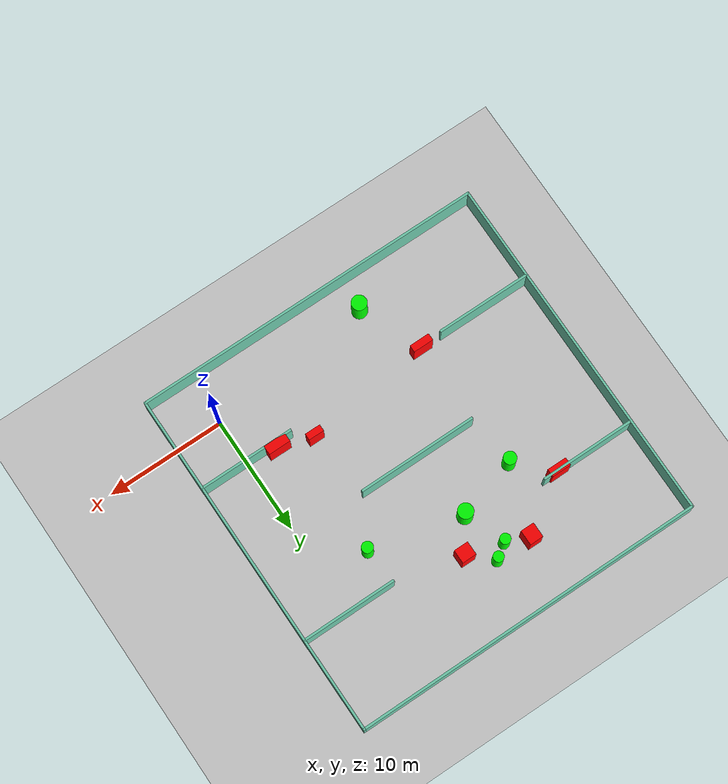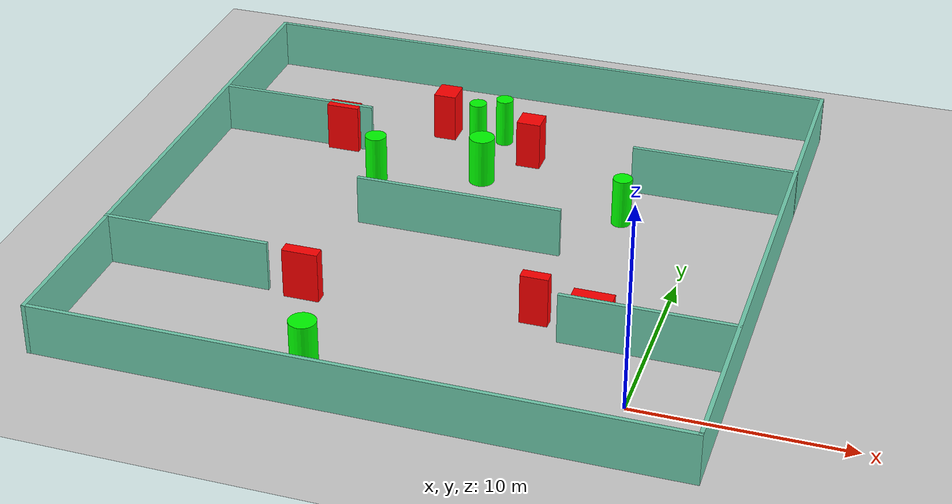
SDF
<sdf version="1.7">
 <world name="default">
  <light name="sun" type="directional">
   <pose>0 0 10 0 -0 0</pose>
   <diffuse>0.8 0.8 0.8 1</diffuse>
   <specular>0.2 0.2 0.2 1</specular>
   <attenuation>
    <range>1000</range>
    <constant>0.9</constant>
    <linear>0.01</linear>
    <quadratic>0.001</quadratic>
   </attenuation>
   <direction>-0.5 0.1 -0.9</direction>
   <spot><inner_angle>0</inner_angle><outer_angle>0</outer_angle><falloff>0</falloff></spot>
  </light>
  <model name="ground_plane">
   <static>1</static>
   <link name="link">
    <collision name="collision">
     <geometry><plane><normal>0 0 1</normal><size>100 100</size></plane></geometry>
     <surface>
      <contact><collide_bitmask>65535</collide_bitmask></contact>
      <friction><ode><mu>100</mu><mu2>50</mu2></ode></friction>
     </surface>
    </collision>
    <visual name="visual">
     <cast_shadows>0</cast_shadows>
     <geometry><plane><normal>0 0 1</normal><size>100 100</size></plane></geometry>
     <material>
      <script><uri>file://media/materials/scripts/gazebo.material</uri><name>Gazebo/Grey</name></script>
     </material>
    </visual>
   </link>
  </model>
  <gravity>0 0 -9.8</gravity>
  <magnetic_field>6e-06 2.3e-05 -4.2e-05</magnetic_field>
  <atmosphere type="adiabatic"/>
  <physics type="ode">
   <max_step_size>0.001</max_step_size>
   <real_time_factor>1</real_time_factor>
   <real_time_update_rate>1000</real_time_update_rate>
  </physics>
  <scene><ambient>0.4 0.4 0.4 1</ambient><background>0.7 0.7 0.7 1</background><shadows>1</shadows></scene>
  <spherical_coordinates>
   <surface_model>EARTH_WGS84</surface_model>
   <latitude_deg>0</latitude_deg>
   <longitude_deg>0</longitude_deg>
   <elevation>0</elevation>
   <heading_deg>0</heading_deg>
  </spherical_coordinates>
  <model name="my_base_walls">
   <link name="Wall_10">
    <collision name="Wall_10_Collision">
     <geometry><box><size>8.2 0.2 2.5</size></box></geometry>
     <pose>0 0 1.25 0 -0 0</pose>
    </collision>
    <visual name="Wall_10_Visual">
     <pose>0 0 1.25 0 -0 0</pose>
     <geometry><box><size>8.2 0.2 2.5</size></box></geometry>
     <material>
      <script><uri>file://media/materials/scripts/gazebo.material</uri><name>Gazebo/Grey</name></script>
      <ambient>0.435294 0.796078 0.67451 1</ambient>
     </material>
     <meta><layer>0</layer></meta>
    </visual>
    <pose>-11 -7 0 0 -0 0</pose>
   </link>
   <link name="Wall_12">
    <collision name="Wall_12_Collision">
     <geometry><box><size>8.2 0.2 2.5</size></box></geometry>
     <pose>0 0 1.25 0 -0 0</pose>
    </collision>
    <visual name="Wall_12_Visual">
     <pose>0 0 1.25 0 -0 0</pose>
     <geometry><box><size>8.2 0.2 2.5</size></box></geometry>
     <material>
      <script><uri>file://media/materials/scripts/gazebo.material</uri><name>Gazebo/Grey</name></script>
      <ambient>0.435294 0.796078 0.67451 1</ambient>
     </material>
     <meta><layer>0</layer></meta>
    </visual>
    <pose>-11 7 0 0 -0 0</pose>
   </link>
   <link name="Wall_14">
    <collision name="Wall_14_Collision">
     <geometry><box><size>8.2 0.2 2.5</size></box></geometry>
     <pose>0 0 1.25 0 -0 0</pose>
    </collision>
    <visual name="Wall_14_Visual">
     <pose>0 0 1.25 0 -0 0</pose>
     <geometry><box><size>8.2 0.2 2.5</size></box></geometry>
     <material>
      <script><uri>file://media/materials/scripts/gazebo.material</uri><name>Gazebo/Grey</name></script>
      <ambient>0.435294 0.796078 0.67451 1</ambient>
     </material>
     <meta><layer>0</layer></meta>
    </visual>
    <pose>11 7 0 0 -0 3.14159</pose>
   </link>
   <link name="Wall_16">
    <collision name="Wall_16_Collision">
     <geometry><box><size>10.2 0.2 2.5</size></box></geometry>
     <pose>0 0 1.25 0 -0 0</pose>
    </collision>
    <visual name="Wall_16_Visual">
     <pose>0 0 1.25 0 -0 0</pose>
     <geometry><box><size>10.2 0.2 2.5</size></box></geometry>
     <material>
      <script><uri>file://media/materials/scripts/gazebo.material</uri><name>Gazebo/Grey</name></script>
      <ambient>0.435294 0.796078 0.67451 1</ambient>
     </material>
     <meta><layer>0</layer></meta>
    </visual>
    <pose>0 0 0 0 -0 3.14159</pose>
   </link>
   <link name="Wall_2">
    <collision name="Wall_2_Collision">
     <geometry><box><size>30.2 0.2 2.5</size></box></geometry>
     <pose>0 0 1.25 0 -0 0</pose>
    </collision>
    <visual name="Wall_2_Visual">
     <pose>0 0 1.25 0 -0 0</pose>
     <geometry><box><size>30.2 0.2 2.5</size></box></geometry>
     <material>
      <script><uri>file://media/materials/scripts/gazebo.material</uri><name>Gazebo/Grey</name></script>
      <ambient>0.435294 0.796078 0.67451 1</ambient>
     </material>
     <meta><layer>0</layer></meta>
    </visual>
    <pose>0 -15 0 0 -0 3.14159</pose>
   </link>
   <link name="Wall_3">
    <collision name="Wall_3_Collision">
     <geometry><box><size>30.2 0.2 2.5</size></box></geometry>
     <pose>0 0 1.25 0 -0 0</pose>
    </collision>
    <visual name="Wall_3_Visual">
     <pose>0 0 1.25 0 -0 0</pose>
     <geometry><box><size>30.2 0.2 2.5</size></box></geometry>
     <material>
      <script><uri>file://media/materials/scripts/gazebo.material</uri><name>Gazebo/Grey</name></script>
      <ambient>0.435294 0.796078 0.67451 1</ambient>
     </material>
     <meta><layer>0</layer></meta>
    </visual>
    <pose>-15 0 0 0 -0 1.5708</pose>
   </link>
   <link name="Wall_4">
    <collision name="Wall_4_Collision">
     <geometry><box><size>30.2 0.2 2.5</size></box></geometry>
     <pose>0 0 1.25 0 -0 0</pose>
    </collision>
    <visual name="Wall_4_Visual">
     <pose>0 0 1.25 0 -0 0</pose>
     <geometry><box><size>30.2 0.2 2.5</size></box></geometry>
     <material>
      <script><uri>file://media/materials/scripts/gazebo.material</uri><name>Gazebo/Grey</name></script>
      <ambient>0.435294 0.796078 0.67451 1</ambient>
     </material>
     <meta><layer>0</layer></meta>
    </visual>
    <pose>0 15 0 0 -0 0</pose>
   </link>
   <link name="Wall_6">
    <collision name="Wall_6_Collision">
     <geometry><box><size>30.2 0.2 2.5</size></box></geometry>
     <pose>0 0 1.25 0 -0 0</pose>
    </collision>
    <visual name="Wall_6_Visual">
     <pose>0 0 1.25 0 -0 0</pose>
     <geometry><box><size>30.2 0.2 2.5</size></box></geometry>
     <material>
      <script><uri>file://media/materials/scripts/gazebo.material</uri><name>Gazebo/Grey</name></script>
      <ambient>0.435294 0.796078 0.67451 1</ambient>
     </material>
     <meta><layer>0</layer></meta>
    </visual>
    <pose>15 0 0 0 -0 1.5708</pose>
   </link>
   <link name="Wall_8">
    <collision name="Wall_8_Collision">
     <geometry><box><size>8.2 0.2 2.5</size></box></geometry>
     <pose>0 0 1.25 0 -0 0</pose>
    </collision>
    <visual name="Wall_8_Visual">
     <pose>0 0 1.25 0 -0 0</pose>
     <geometry><box><size>8.2 0.2 2.5</size></box></geometry>
     <material>
      <script><uri>file://media/materials/scripts/gazebo.material</uri><name>Gazebo/Grey</name></script>
      <ambient>0.435294 0.796078 0.67451 1</ambient>
     </material>
     <meta><layer>0</layer></meta>
    </visual>
    <pose>11 -7 0 0 -0 3.14159</pose>
   </link>
   <static>1</static>
   <pose>-11 11 0 0 -0 0</pose>
  </model>
  <model name="cylinder1">
   <static>1</static>
   <link name="link">
    <inertial>
     <mass>1</mass>
     <inertia><ixx>0.5</ixx><ixy>0</ixy><ixz>0</ixz><iyy>0.5</iyy><iyz>0</iyz><izz>1</izz></inertia>
    </inertial>
    <collision name="collision">
     <geometry><cylinder><radius>0.6447902791058187</radius><length>2.5</length></cylinder></geometry>
    </collision>
    <visual name="visual">
     <geometry><cylinder><radius>0.6447902791058187</radius><length>2.5</length></cylinder></geometry>
     <material>
      <ambient>0 1 0 1</ambient>
      <diffuse>0 1 0 1</diffuse>
      <specular>0.1 0.1 0.1 1</specular>
      <emissive>0 0 0 0</emissive>
     </material>
    </visual>
   </link>
   <pose>-11.564036265610556 16.683112732045867 1.25 0 0 0</pose>
  </model>
  <model name="cylinder2">
   <static>1</static>
   <link name="link">
    <inertial>
     <mass>1</mass>
     <inertia><ixx>0.5</ixx><ixy>0</ixy><ixz>0</ixz><iyy>0.5</iyy><iyz>0</iyz><izz>1</izz></inertia>
    </inertial>
    <collision name="collision">
     <geometry><cylinder><radius>0.4777724720583263</radius><length>2.5</length></cylinder></geometry>
    </collision>
    <visual name="visual">
     <geometry><cylinder><radius>0.4777724720583263</radius><length>2.5</length></cylinder></geometry>
     <material>
      <ambient>0 1 0 1</ambient>
      <diffuse>0 1 0 1</diffuse>
      <specular>0.1 0.1 0.1 1</specular>
      <emissive>0 0 0 0</emissive>
     </material>
    </visual>
   </link>
   <pose>-3.8407499618183465 14.807957068993876 1.25 0 0 0</pose>
  </model>
  <model name="cylinder3">
   <static>1</static>
   <link name="link">
    <inertial>
     <mass>1</mass>
     <inertia><ixx>0.5</ixx><ixy>0</ixy><ixz>0</ixz><iyy>0.5</iyy><iyz>0</iyz><izz>1</izz></inertia>
    </inertial>
    <collision name="collision">
     <geometry><cylinder><radius>0.53998703326156</radius><length>2.5</length></cylinder></geometry>
    </collision>
    <visual name="visual">
     <geometry><cylinder><radius>0.53998703326156</radius><length>2.5</length></cylinder></geometry>
     <material>
      <ambient>0 1 0 1</ambient>
      <diffuse>0 1 0 1</diffuse>
      <specular>0.1 0.1 0.1 1</specular>
      <emissive>0 0 0 0</emissive>
     </material>
    </visual>
   </link>
   <pose>-16.687035335358313 15.189529056364933 1.25 0 0 0</pose>
  </model>
  <model name="cylinder4">
   <static>1</static>
   <link name="link">
    <inertial>
     <mass>1</mass>
     <inertia><ixx>0.5</ixx><ixy>0</ixy><ixz>0</ixz><iyy>0.5</iyy><iyz>0</iyz><izz>1</izz></inertia>
    </inertial>
    <collision name="collision">
     <geometry><cylinder><radius>0.44562268689097345</radius><length>2.5</length></cylinder></geometry>
    </collision>
    <visual name="visual">
     <geometry><cylinder><radius>0.44562268689097345</radius><length>2.5</length></cylinder></geometry>
     <material>
      <ambient>0 1 0 1</ambient>
      <diffuse>0 1 0 1</diffuse>
      <specular>0.1 0.1 0.1 1</specular>
      <emissive>0 0 0 0</emissive>
     </material>
    </visual>
   </link>
   <pose>-12.840095237244663 20.11344051284389 1.25 0 0 0</pose>
  </model>
  <model name="cylinder5">
   <static>1</static>
   <link name="link">
    <inertial>
     <mass>1</mass>
     <inertia><ixx>0.5</ixx><ixy>0</ixy><ixz>0</ixz><iyy>0.5</iyy><iyz>0</iyz><izz>1</izz></inertia>
    </inertial>
    <collision name="collision">
     <geometry><cylinder><radius>0.44742096008291393</radius><length>2.5</length></cylinder></geometry>
    </collision>
    <visual name="visual">
     <geometry><cylinder><radius>0.44742096008291393</radius><length>2.5</length></cylinder></geometry>
     <material>
      <ambient>0 1 0 1</ambient>
      <diffuse>0 1 0 1</diffuse>
      <specular>0.1 0.1 0.1 1</specular>
      <emissive>0 0 0 0</emissive>
     </material>
    </visual>
   </link>
   <pose>-11.644025963202816 20.94690907163536 1.25 0 0 0</pose>
  </model>
  <model name="cylinder6">
   <static>1</static>
   <link name="link">
    <inertial>
     <mass>1</mass>
     <inertia><ixx>0.5</ixx><ixy>0</ixy><ixz>0</ixz><iyy>0.5</iyy><iyz>0</iyz><izz>1</izz></inertia>
    </inertial>
    <collision name="collision">
     <geometry><cylinder><radius>0.6437420555919428</radius><length>2.5</length></cylinder></geometry>
    </collision>
    <visual name="visual">
     <geometry><cylinder><radius>0.6437420555919428</radius><length>2.5</length></cylinder></geometry>
     <material>
      <ambient>0 1 0 1</ambient>
      <diffuse>0 1 0 1</diffuse>
      <specular>0.1 0.1 0.1 1</specular>
      <emissive>0 0 0 0</emissive>
     </material>
    </visual>
   </link>
   <pose>-14.00285327896606 -1.4074942018436767 1.25 0 0 0</pose>
  </model>
  <model name="box1">
   <static>1</static>
   <link name="link">
    <inertial>
     <mass>1</mass>
     <inertia><ixx>0.083</ixx><ixy>0</ixy><ixz>0</ixz><iyy>0.083</iyy><iyz>0</iyz><izz>0.083</izz></inertia>
    </inertial>
    <collision name="collision">
     <geometry><box><size>1.6599491947394347 0.6842997976731879 2.5</size></box></geometry>
    </collision>
    <visual name="visual">
     <geometry><box><size>1.6599491947394347 0.6842997976731879 2.5</size></box></geometry>
     <material>
      <ambient>1 0 0 1</ambient>
      <diffuse>1 0 0 1</diffuse>
      <specular>0.1 0.1 0.1 1</specular>
      <emissive>0 0 0 0</emissive>
     </material>
    </visual>
    <sensor name="my_contact" type="contact">
     <contact><collision>box_collision</collision><topic>__default_topic__</topic></contact>
    </sensor>
   </link>
   <pose>-19.368945946564427 17.887566034626353 1.25 0 0 0</pose>
  </model>
  <model name="box2">
   <static>1</static>
   <link name="link">
    <inertial>
     <mass>1</mass>
     <inertia><ixx>0.083</ixx><ixy>0</ixy><ixz>0</ixz><iyy>0.083</iyy><iyz>0</iyz><izz>0.083</izz></inertia>
    </inertial>
    <collision name="collision">
     <geometry><box><size>1.8940534291015707 0.757374940634066 2.5</size></box></geometry>
    </collision>
    <visual name="visual">
     <geometry><box><size>1.8940534291015707 0.757374940634066 2.5</size></box></geometry>
     <material>
      <ambient>1 0 0 1</ambient>
      <diffuse>1 0 0 1</diffuse>
      <specular>0.1 0.1 0.1 1</specular>
      <emissive>0 0 0 0</emissive>
     </material>
    </visual>
    <sensor name="my_contact" type="contact">
     <contact><collision>box_collision</collision><topic>__default_topic__</topic></contact>
    </sensor>
   </link>
   <pose>-2.601069223563261 4.317809722207032 1.25 0 0 0</pose>
  </model>
  <model name="box3">
   <static>1</static>
   <link name="link">
    <inertial>
     <mass>1</mass>
     <inertia><ixx>0.083</ixx><ixy>0</ixy><ixz>0</ixz><iyy>0.083</iyy><iyz>0</iyz><izz>0.083</izz></inertia>
    </inertial>
    <collision name="collision">
     <geometry><box><size>1.329811722160248 0.558893130019299 2.5</size></box></geometry>
    </collision>
    <visual name="visual">
     <geometry><box><size>1.329811722160248 0.558893130019299 2.5</size></box></geometry>
     <material>
      <ambient>1 0 0 1</ambient>
      <diffuse>1 0 0 1</diffuse>
      <specular>0.1 0.1 0.1 1</specular>
      <emissive>0 0 0 0</emissive>
     </material>
    </visual>
    <sensor name="my_contact" type="contact">
     <contact><collision>box_collision</collision><topic>__default_topic__</topic></contact>
    </sensor>
   </link>
   <pose>-5.455026406873195 5.182491416823304 1.25 0 0 0</pose>
  </model>
  <model name="box4">
   <static>1</static>
   <link name="link">
    <inertial>
     <mass>1</mass>
     <inertia><ixx>0.083</ixx><ixy>0</ixy><ixz>0</ixz><iyy>0.083</iyy><iyz>0</iyz><izz>0.083</izz></inertia>
    </inertial>
    <collision name="collision">
     <geometry><box><size>1.734437649253632 0.5984523673970185 2.5</size></box></geometry>
    </collision>
    <visual name="visual">
     <geometry><box><size>1.734437649253632 0.5984523673970185 2.5</size></box></geometry>
     <material>
      <ambient>1 0 0 1</ambient>
      <diffuse>1 0 0 1</diffuse>
      <specular>0.1 0.1 0.1 1</specular>
      <emissive>0 0 0 0</emissive>
     </material>
    </visual>
    <sensor name="my_contact" type="contact">
     <contact><collision>box_collision</collision><topic>__default_topic__</topic></contact>
    </sensor>
   </link>
   <pose>-16.190213133296787 3.9324198616566015 1.25 0 0 0</pose>
  </model>
  <model name="box5">
   <static>1</static>
   <link name="link">
    <inertial>
     <mass>1</mass>
     <inertia><ixx>0.083</ixx><ixy>0</ixy><ixz>0</ixz><iyy>0.083</iyy><iyz>0</iyz><izz>0.083</izz></inertia>
    </inertial>
    <collision name="collision">
     <geometry><box><size>1.2295981406258065 1.1561269251101933 2.5</size></box></geometry>
    </collision>
    <visual name="visual">
     <geometry><box><size>1.2295981406258065 1.1561269251101933 2.5</size></box></geometry>
     <material>
      <ambient>1 0 0 1</ambient>
      <diffuse>1 0 0 1</diffuse>
      <specular>0.1 0.1 0.1 1</specular>
      <emissive>0 0 0 0</emissive>
     </material>
    </visual>
    <sensor name="my_contact" type="contact">
     <contact><collision>box_collision</collision><topic>__default_topic__</topic></contact>
    </sensor>
   </link>
   <pose>-9.732026990656504 19.272811370756372 1.25 0 0 0</pose>
  </model>
  <model name="box6">
   <static>1</static>
   <link name="link">
    <inertial>
     <mass>1</mass>
     <inertia><ixx>0.083</ixx><ixy>0</ixy><ixz>0</ixz><iyy>0.083</iyy><iyz>0</iyz><izz>0.083</izz></inertia>
    </inertial>
    <collision name="collision">
     <geometry><box><size>1.1525751462952472 1.2777045630604955 2.5</size></box></geometry>
    </collision>
    <visual name="visual">
     <geometry><box><size>1.1525751462952472 1.2777045630604955 2.5</size></box></geometry>
     <material>
      <ambient>1 0 0 1</ambient>
      <diffuse>1 0 0 1</diffuse>
      <specular>0.1 0.1 0.1 1</specular>
      <emissive>0 0 0 0</emissive>
     </material>
    </visual>
    <sensor name="my_contact" type="contact">
     <contact><collision>box_collision</collision><topic>__default_topic__</topic></contact>
    </sensor>
   </link>
   <pose>-14.722235539521424 20.93199293180399 1.25 0 0 0</pose>
  </model>
 </world>
</sdf>
